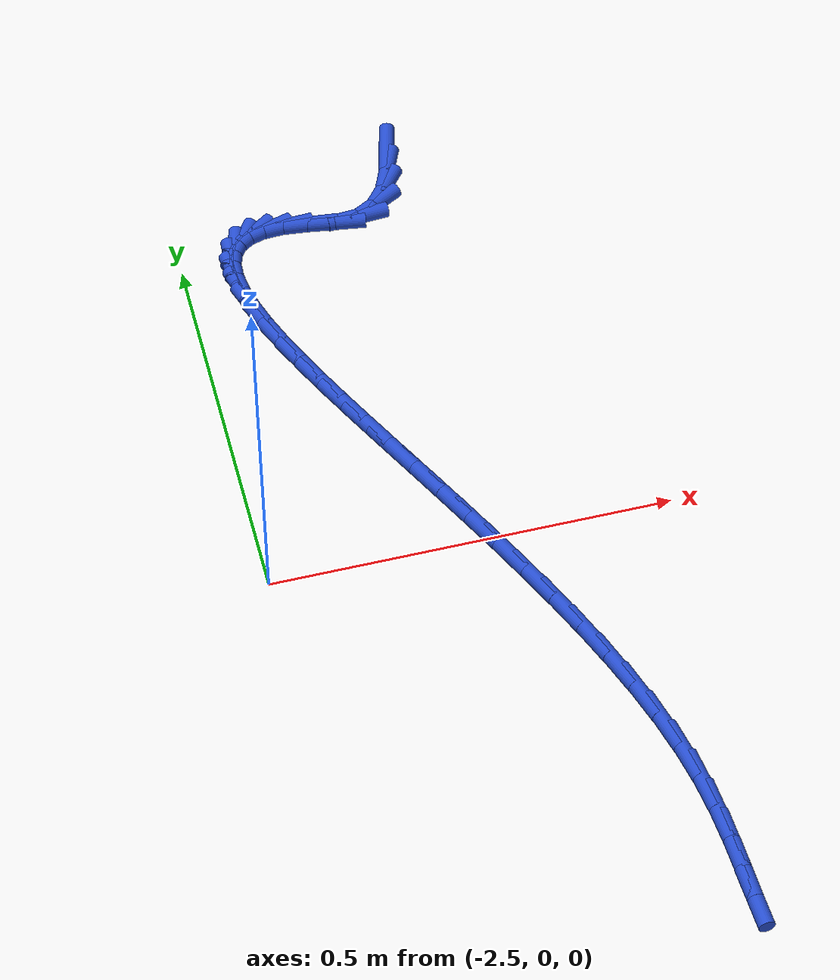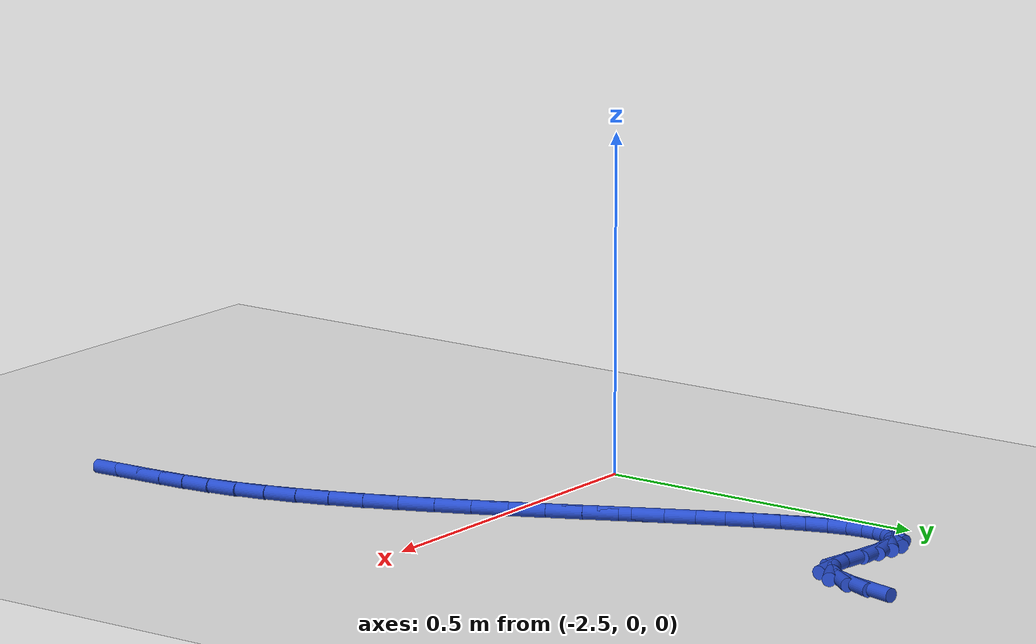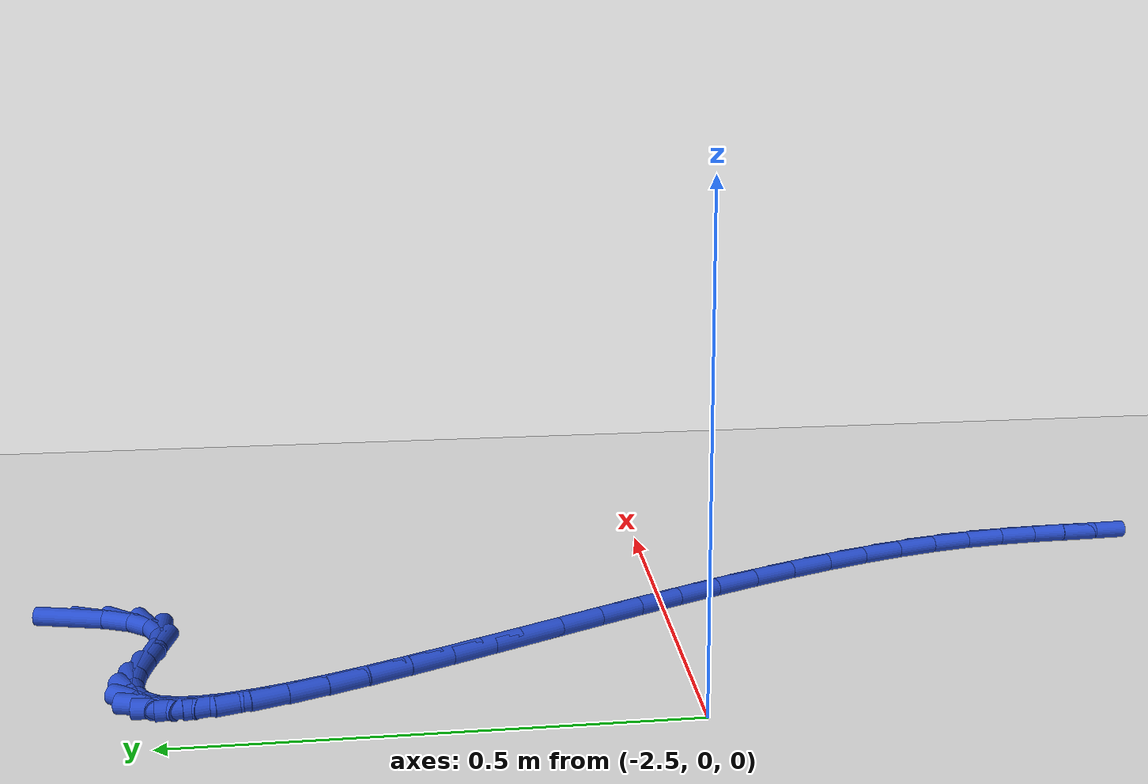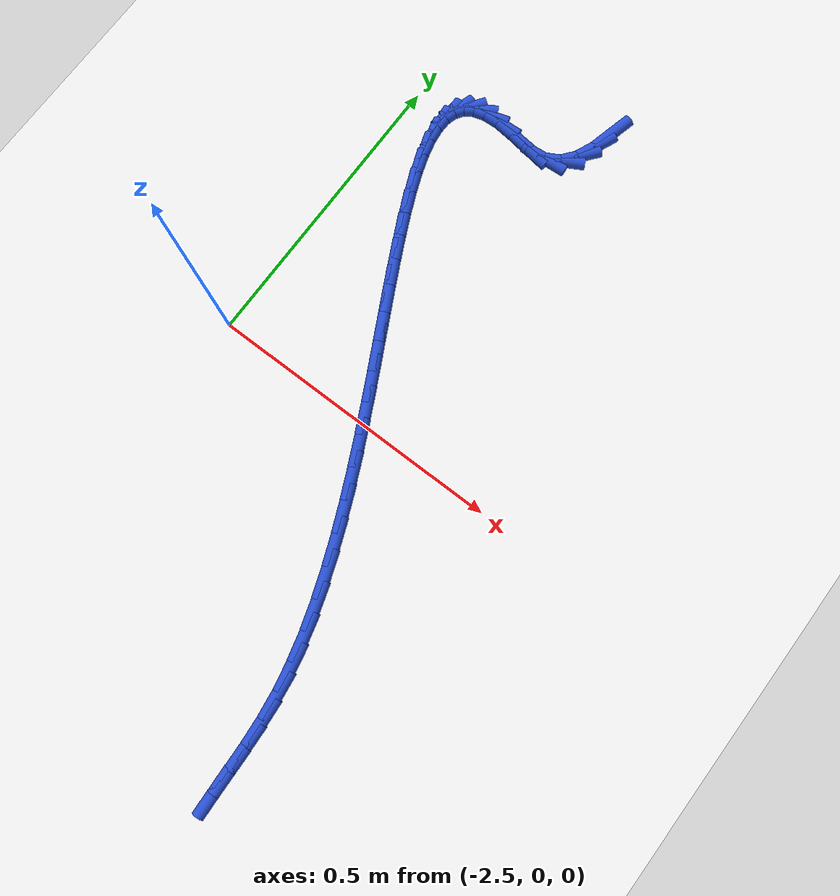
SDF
<sdf version="1.6">
 <world name="default">
  <model name="ground_plane">
   <static>1</static>
   <link name="link">
    <collision name="collision">
     <geometry><plane><normal>0 0 1</normal><size>100 100</size></plane></geometry>
     <surface><friction><ode><mu>100</mu><mu2>50</mu2></ode></friction></surface>
    </collision>
    <visual name="visual">
     <cast_shadows>0</cast_shadows>
     <geometry><plane><normal>0 0 1</normal><size>100 100</size></plane></geometry>
     <material>
      <script><uri>file://media/materials/scripts/gazebo.material</uri><name>Gazebo/WhiteGlow</name></script>
     </material>
    </visual>
   </link>
  </model>
  <model name="line">
   <link name="link_96">
    <pose>-2.200033931635867 0.6312345174077896 0.01 0 1.57 1.324181488729034</pose>
    <collision name="collision">
     <geometry><cylinder><radius>0.01</radius><length>0.08</length></cylinder></geometry>
    </collision>
    <visual name="visual">
     <material>
      <script><name>Gazebo/Blue</name><uri>file://media/materials/scripts/gazebo.material</uri></script>
     </material>
     <geometry><cylinder><radius>0.01</radius><length>0.08</length></cylinder></geometry>
    </visual>
   </link>
   <link name="link_97">
    <pose>-2.2090237972915436 0.5955234820043507 0.01 0 1.57 1.1661017748917124</pose>
    <collision name="collision">
     <geometry><cylinder><radius>0.01</radius><length>0.08</length></cylinder></geometry>
    </collision>
    <visual name="visual">
     <material>
      <script><name>Gazebo/Blue</name><uri>file://media/materials/scripts/gazebo.material</uri></script>
     </material>
     <geometry><cylinder><radius>0.01</radius><length>0.08</length></cylinder></geometry>
    </visual>
   </link>
   <link name="link_98">
    <pose>-2.2217738977504995 0.5657570339187514 0.01 0 1.57 0.8970929469493931</pose>
    <collision name="collision">
     <geometry><cylinder><radius>0.01</radius><length>0.08</length></cylinder></geometry>
    </collision>
    <visual name="visual">
     <material>
      <script><name>Gazebo/Blue</name><uri>file://media/materials/scripts/gazebo.material</uri></script>
     </material>
     <geometry><cylinder><radius>0.01</radius><length>0.08</length></cylinder></geometry>
    </visual>
   </link>
   <link name="link_99">
    <pose>-2.239467806494968 0.5435925431350213 0.01 0 1.57 0.4964865109241898</pose>
    <collision name="collision">
     <geometry><cylinder><radius>0.01</radius><length>0.08</length></cylinder></geometry>
    </collision>
    <visual name="visual">
     <material>
      <script><name>Gazebo/Blue</name><uri>file://media/materials/scripts/gazebo.material</uri></script>
     </material>
     <geometry><cylinder><radius>0.01</radius><length>0.08</length></cylinder></geometry>
    </visual>
   </link>
   <link name="link_100">
    <pose>-2.263289097007182 0.5306873796371903 0.01 0 1.57 0.06779342268536494</pose>
    <collision name="collision">
     <geometry><cylinder><radius>0.01</radius><length>0.08</length></cylinder></geometry>
    </collision>
    <visual name="visual">
     <material>
      <script><name>Gazebo/Blue</name><uri>file://media/materials/scripts/gazebo.material</uri></script>
     </material>
     <geometry><cylinder><radius>0.01</radius><length>0.08</length></cylinder></geometry>
    </visual>
   </link>
   <link name="link_101">
    <pose>-2.29432227981197 0.5285803049665666 0.01 0 1.57 -0.1472864663222539</pose>
    <collision name="collision">
     <geometry><cylinder><radius>0.01</radius><length>0.08</length></cylinder></geometry>
    </collision>
    <visual name="visual">
     <material>
      <script><name>Gazebo/Blue</name><uri>file://media/materials/scripts/gazebo.material</uri></script>
     </material>
     <geometry><cylinder><radius>0.01</radius><length>0.08</length></cylinder></geometry>
    </visual>
   </link>
   <link name="link_102">
    <pose>-2.3294621179672723 0.5337936806350279 0.01 0 1.57 -0.10527369933602307</pose>
    <collision name="collision">
     <geometry><cylinder><radius>0.01</radius><length>0.08</length></cylinder></geometry>
    </collision>
    <visual name="visual">
     <material>
      <script><name>Gazebo/Blue</name><uri>file://media/materials/scripts/gazebo.material</uri></script>
     </material>
     <geometry><cylinder><radius>0.01</radius><length>0.08</length></cylinder></geometry>
    </visual>
   </link>
   <link name="link_103">
    <pose>-2.360842791039986 0.5371094984777689 0.01 0 1.57 0.05088248573503267</pose>
    <collision name="collision">
     <geometry><cylinder><radius>0.01</radius><length>0.08</length></cylinder></geometry>
    </collision>
    <visual name="visual">
     <material>
      <script><name>Gazebo/Blue</name><uri>file://media/materials/scripts/gazebo.material</uri></script>
     </material>
     <geometry><cylinder><radius>0.01</radius><length>0.08</length></cylinder></geometry>
    </visual>
   </link>
   <link name="link_104">
    <pose>-2.3862630589339346 0.5358149346460016 0.01 0 1.57 0.28014283893355535</pose>
    <collision name="collision">
     <geometry><cylinder><radius>0.01</radius><length>0.08</length></cylinder></geometry>
    </collision>
    <visual name="visual">
     <material>
      <script><name>Gazebo/Blue</name><uri>file://media/materials/scripts/gazebo.material</uri></script>
     </material>
     <geometry><cylinder><radius>0.01</radius><length>0.08</length></cylinder></geometry>
    </visual>
   </link>
   <link name="link_105">
    <pose>-2.406059202718022 0.5301194062699236 0.01 0 1.57 0.5974458333489813</pose>
    <collision name="collision">
     <geometry><cylinder><radius>0.01</radius><length>0.08</length></cylinder></geometry>
    </collision>
    <visual name="visual">
     <material>
      <script><name>Gazebo/Blue</name><uri>file://media/materials/scripts/gazebo.material</uri></script>
     </material>
     <geometry><cylinder><radius>0.01</radius><length>0.08</length></cylinder></geometry>
    </visual>
   </link>
   <link name="link_106">
    <pose>-2.420576083762055 0.5202422116611217 0.01 0 1.57 0.9651908982570581</pose>
    <collision name="collision">
     <geometry><cylinder><radius>0.01</radius><length>0.08</length></cylinder></geometry>
    </collision>
    <visual name="visual">
     <material>
      <script><name>Gazebo/Blue</name><uri>file://media/materials/scripts/gazebo.material</uri></script>
     </material>
     <geometry><cylinder><radius>0.01</radius><length>0.08</length></cylinder></geometry>
    </visual>
   </link>
   <link name="link_107">
    <pose>-2.430158563435842 0.5064026491311819 0.01 0 1.57 1.2941100710265125</pose>
    <collision name="collision">
     <geometry><cylinder><radius>0.01</radius><length>0.08</length></cylinder></geometry>
    </collision>
    <visual name="visual">
     <material>
      <script><name>Gazebo/Blue</name><uri>file://media/materials/scripts/gazebo.material</uri></script>
     </material>
     <geometry><cylinder><radius>0.01</radius><length>0.08</length></cylinder></geometry>
    </visual>
   </link>
   <link name="link_108">
    <pose>-2.435151503109187 0.48882001699168975 0.01 0 1.57 1.5353593182479661</pose>
    <collision name="collision">
     <geometry><cylinder><radius>0.01</radius><length>0.08</length></cylinder></geometry>
    </collision>
    <visual name="visual">
     <material>
      <script><name>Gazebo/Blue</name><uri>file://media/materials/scripts/gazebo.material</uri></script>
     </material>
     <geometry><cylinder><radius>0.01</radius><length>0.08</length></cylinder></geometry>
    </visual>
   </link>
   <link name="link_109">
    <pose>-2.4358997641518974 0.4677136135542323 0.01 0 1.57 -1.4424019513399546</pose>
    <collision name="collision">
     <geometry><cylinder><radius>0.01</radius><length>0.08</length></cylinder></geometry>
    </collision>
    <visual name="visual">
     <material>
      <script><name>Gazebo/Blue</name><uri>file://media/materials/scripts/gazebo.material</uri></script>
     </material>
     <geometry><cylinder><radius>0.01</radius><length>0.08</length></cylinder></geometry>
    </visual>
   </link>
   <link name="link_110">
    <pose>-2.43274820793378 0.44330273713039475 0.01 0 1.57 -1.331559296932618</pose>
    <collision name="collision">
     <geometry><cylinder><radius>0.01</radius><length>0.08</length></cylinder></geometry>
    </collision>
    <visual name="visual">
     <material>
      <script><name>Gazebo/Blue</name><uri>file://media/materials/scripts/gazebo.material</uri></script>
     </material>
     <geometry><cylinder><radius>0.01</radius><length>0.08</length></cylinder></geometry>
    </visual>
   </link>
   <link name="link_111">
    <pose>-2.4260416958246416 0.4158066860317641 0.01 0 1.57 -1.2551060258552802</pose>
    <collision name="collision">
     <geometry><cylinder><radius>0.01</radius><length>0.08</length></cylinder></geometry>
    </collision>
    <visual name="visual">
     <material>
      <script><name>Gazebo/Blue</name><uri>file://media/materials/scripts/gazebo.material</uri></script>
     </material>
     <geometry><cylinder><radius>0.01</radius><length>0.08</length></cylinder></geometry>
    </visual>
   </link>
   <link name="link_112">
    <pose>-2.416125089194288 0.3854447585699258 0.01 0 1.57 -1.2013479641875977</pose>
    <collision name="collision">
     <geometry><cylinder><radius>0.01</radius><length>0.08</length></cylinder></geometry>
    </collision>
    <visual name="visual">
     <material>
      <script><name>Gazebo/Blue</name><uri>file://media/materials/scripts/gazebo.material</uri></script>
     </material>
     <geometry><cylinder><radius>0.01</radius><length>0.08</length></cylinder></geometry>
    </visual>
   </link>
   <link name="link_113">
    <pose>-2.403343249412526 0.3524362530564667 0.01 0 1.57 -1.1631554214692608</pose>
    <collision name="collision">
     <geometry><cylinder><radius>0.01</radius><length>0.08</length></cylinder></geometry>
    </collision>
    <visual name="visual">
     <material>
      <script><name>Gazebo/Blue</name><uri>file://media/materials/scripts/gazebo.material</uri></script>
     </material>
     <geometry><cylinder><radius>0.01</radius><length>0.08</length></cylinder></geometry>
    </visual>
   </link>
   <link name="link_114">
    <pose>-2.3880410378491628 0.31700046780297214 0.01 0 1.57 -1.1361204542648076</pose>
    <collision name="collision">
     <geometry><cylinder><radius>0.01</radius><length>0.08</length></cylinder></geometry>
    </collision>
    <visual name="visual">
     <material>
      <script><name>Gazebo/Blue</name><uri>file://media/materials/scripts/gazebo.material</uri></script>
     </material>
     <geometry><cylinder><radius>0.01</radius><length>0.08</length></cylinder></geometry>
    </visual>
   </link>
   <link name="link_115">
    <pose>-2.3705633158740045 0.27935670112102895 0.01 0 1.57 -1.1174524422533683</pose>
    <collision name="collision">
     <geometry><cylinder><radius>0.01</radius><length>0.08</length></cylinder></geometry>
    </collision>
    <visual name="visual">
     <material>
      <script><name>Gazebo/Blue</name><uri>file://media/materials/scripts/gazebo.material</uri></script>
     </material>
     <geometry><cylinder><radius>0.01</radius><length>0.08</length></cylinder></geometry>
    </visual>
   </link>
   <link name="link_116">
    <pose>-2.3512549448568576 0.2397242513222232 0.01 0 1.57 -1.1053486552160994</pose>
    <collision name="collision">
     <geometry><cylinder><radius>0.01</radius><length>0.08</length></cylinder></geometry>
    </collision>
    <visual name="visual">
     <material>
      <script><name>Gazebo/Blue</name><uri>file://media/materials/scripts/gazebo.material</uri></script>
     </material>
     <geometry><cylinder><radius>0.01</radius><length>0.08</length></cylinder></geometry>
    </visual>
   </link>
   <link name="link_117">
    <pose>-2.3304607861675284 0.19832241671813966 0.01 0 1.57 -1.0986339196788268</pose>
    <collision name="collision">
     <geometry><cylinder><radius>0.01</radius><length>0.08</length></cylinder></geometry>
    </collision>
    <visual name="visual">
     <material>
      <script><name>Gazebo/Blue</name><uri>file://media/materials/scripts/gazebo.material</uri></script>
     </material>
     <geometry><cylinder><radius>0.01</radius><length>0.08</length></cylinder></geometry>
    </visual>
   </link>
   <link name="link_118">
    <pose>-2.3085257011758245 0.15537049562036678 0.01 0 1.57 -1.0965504898381218</pose>
    <collision name="collision">
     <geometry><cylinder><radius>0.01</radius><length>0.08</length></cylinder></geometry>
    </collision>
    <visual name="visual">
     <material>
      <script><name>Gazebo/Blue</name><uri>file://media/materials/scripts/gazebo.material</uri></script>
     </material>
     <geometry><cylinder><radius>0.01</radius><length>0.08</length></cylinder></geometry>
    </visual>
   </link>
   <link name="link_119">
    <pose>-2.2857945512515507 0.11108778634048953 0.01 0 1.57 -1.0986335123437627</pose>
    <collision name="collision">
     <geometry><cylinder><radius>0.01</radius><length>0.08</length></cylinder></geometry>
    </collision>
    <visual name="visual">
     <material>
      <script><name>Gazebo/Blue</name><uri>file://media/materials/scripts/gazebo.material</uri></script>
     </material>
     <geometry><cylinder><radius>0.01</radius><length>0.08</length></cylinder></geometry>
    </visual>
   </link>
   <link name="link_120">
    <pose>-2.262612197764515 0.06569358719009404 0.01 0 1.57 -1.104637097486446</pose>
    <collision name="collision">
     <geometry><cylinder><radius>0.01</radius><length>0.08</length></cylinder></geometry>
    </collision>
    <visual name="visual">
     <material>
      <script><name>Gazebo/Blue</name><uri>file://media/materials/scripts/gazebo.material</uri></script>
     </material>
     <geometry><cylinder><radius>0.01</radius><length>0.08</length></cylinder></geometry>
    </visual>
   </link>
   <link name="link_121">
    <pose>-2.2393235020845235 0.019407196480766525 0.01 0 1.57 -1.1144918376708244</pose>
    <collision name="collision">
     <geometry><cylinder><radius>0.01</radius><length>0.08</length></cylinder></geometry>
    </collision>
    <visual name="visual">
     <material>
      <script><name>Gazebo/Blue</name><uri>file://media/materials/scripts/gazebo.material</uri></script>
     </material>
     <geometry><cylinder><radius>0.01</radius><length>0.08</length></cylinder></geometry>
    </visual>
   </link>
   <link name="link_122">
    <pose>-2.2162733255813825 -0.027552087475908163 0.01 0 1.57 -1.1282832037546906</pose>
    <collision name="collision">
     <geometry><cylinder><radius>0.01</radius><length>0.08</length></cylinder></geometry>
    </collision>
    <visual name="visual">
     <material>
      <script><name>Gazebo/Blue</name><uri>file://media/materials/scripts/gazebo.material</uri></script>
     </material>
     <geometry><cylinder><radius>0.01</radius><length>0.08</length></cylinder></geometry>
    </visual>
   </link>
   <link name="link_123">
    <pose>-2.1938065296248985 -0.07496496636834134 0.01 0 1.57 -1.1462450555171713</pose>
    <collision name="collision">
     <geometry><cylinder><radius>0.01</radius><length>0.08</length></cylinder></geometry>
    </collision>
    <visual name="visual">
     <material>
      <script><name>Gazebo/Blue</name><uri>file://media/materials/scripts/gazebo.material</uri></script>
     </material>
     <geometry><cylinder><radius>0.01</radius><length>0.08</length></cylinder></geometry>
    </visual>
   </link>
   <link name="link_124">
    <pose>-2.1722679755848793 -0.12261214188494818 0.01 0 1.57 -1.1687652728186044</pose>
    <collision name="collision">
     <geometry><cylinder><radius>0.01</radius><length>0.08</length></cylinder></geometry>
    </collision>
    <visual name="visual">
     <material>
      <script><name>Gazebo/Blue</name><uri>file://media/materials/scripts/gazebo.material</uri></script>
     </material>
     <geometry><cylinder><radius>0.01</radius><length>0.08</length></cylinder></geometry>
    </visual>
   </link>
   <link name="link_125">
    <pose>-2.15200252483113 -0.17027431571414253 0.01 0 1.57 -1.1964020836233193</pose>
    <collision name="collision">
     <geometry><cylinder><radius>0.01</radius><length>0.08</length></cylinder></geometry>
    </collision>
    <visual name="visual">
     <material>
      <script><name>Gazebo/Blue</name><uri>file://media/materials/scripts/gazebo.material</uri></script>
     </material>
     <geometry><cylinder><radius>0.01</radius><length>0.08</length></cylinder></geometry>
    </visual>
   </link>
   <link name="link_126">
    <pose>-2.133355038733457 -0.21773218954433943 0.01 0 1.57 -1.2299103125443265</pose>
    <collision name="collision">
     <geometry><cylinder><radius>0.01</radius><length>0.08</length></cylinder></geometry>
    </collision>
    <visual name="visual">
     <material>
      <script><name>Gazebo/Blue</name><uri>file://media/materials/scripts/gazebo.material</uri></script>
     </material>
     <geometry><cylinder><radius>0.01</radius><length>0.08</length></cylinder></geometry>
    </visual>
   </link>
   <link name="link_127">
    <pose>-2.1166703786616683 -0.26476646506395035 0.01 0 1.57 -1.270276299481934</pose>
    <collision name="collision">
     <geometry><cylinder><radius>0.01</radius><length>0.08</length></cylinder></geometry>
    </collision>
    <visual name="visual">
     <material>
      <script><name>Gazebo/Blue</name><uri>file://media/materials/scripts/gazebo.material</uri></script>
     </material>
     <geometry><cylinder><radius>0.01</radius><length>0.08</length></cylinder></geometry>
    </visual>
   </link>
   <link name="link_128">
    <pose>-2.1022934059855696 -0.31115784396139035 0.01 0 1.57 -1.3187578166050682</pose>
    <collision name="collision">
     <geometry><cylinder><radius>0.01</radius><length>0.08</length></cylinder></geometry>
    </collision>
    <visual name="visual">
     <material>
      <script><name>Gazebo/Blue</name><uri>file://media/materials/scripts/gazebo.material</uri></script>
     </material>
     <geometry><cylinder><radius>0.01</radius><length>0.08</length></cylinder></geometry>
    </visual>
   </link>
   <link name="link_129">
    <pose>-2.0905689820749678 -0.3566870279250733 0.01 0 1.57 -1.3769129942875904</pose>
    <collision name="collision">
     <geometry><cylinder><radius>0.01</radius><length>0.08</length></cylinder></geometry>
    </collision>
    <visual name="visual">
     <material>
      <script><name>Gazebo/Blue</name><uri>file://media/materials/scripts/gazebo.material</uri></script>
     </material>
     <geometry><cylinder><radius>0.01</radius><length>0.08</length></cylinder></geometry>
    </visual>
   </link>
   <link name="link_130">
    <pose>-2.081841686964956 -0.4011347108924226 0.01 0 1.57 -1.4402195881960311</pose>
    <collision name="collision">
     <geometry><cylinder><radius>0.01</radius><length>0.08</length></cylinder></geometry>
    </collision>
    <visual name="visual">
     <material>
      <script><name>Gazebo/Blue</name><uri>file://media/materials/scripts/gazebo.material</uri></script>
     </material>
     <geometry><cylinder><radius>0.01</radius><length>0.08</length></cylinder></geometry>
    </visual>
   </link>
   <link name="link_131">
    <pose>-2.076176480105757 -0.4442738830359134 0.01 0 1.57 -1.490589566498928</pose>
    <collision name="collision">
     <geometry><cylinder><radius>0.01</radius><length>0.08</length></cylinder></geometry>
    </collision>
    <visual name="visual">
     <material>
      <script><name>Gazebo/Blue</name><uri>file://media/materials/scripts/gazebo.material</uri></script>
     </material>
     <geometry><cylinder><radius>0.01</radius><length>0.08</length></cylinder></geometry>
    </visual>
   </link>
   <link name="link_132">
    <pose>-2.0728341927399403 -0.48585538016944924 0.01 0 1.57 -1.523003486269246</pose>
    <collision name="collision">
     <geometry><cylinder><radius>0.01</radius><length>0.08</length></cylinder></geometry>
    </collision>
    <visual name="visual">
     <material>
      <script><name>Gazebo/Blue</name><uri>file://media/materials/scripts/gazebo.material</uri></script>
     </material>
     <geometry><cylinder><radius>0.01</radius><length>0.08</length></cylinder></geometry>
    </visual>
   </link>
   <link name="link_133">
    <pose>-2.0709319894963176 -0.5256260799798046 0.01 0 1.57 -1.5351426713087633</pose>
    <collision name="collision">
     <geometry><cylinder><radius>0.01</radius><length>0.08</length></cylinder></geometry>
    </collision>
    <visual name="visual">
     <material>
      <script><name>Gazebo/Blue</name><uri>file://media/materials/scripts/gazebo.material</uri></script>
     </material>
     <geometry><cylinder><radius>0.01</radius><length>0.08</length></cylinder></geometry>
    </visual>
   </link>
   <link name="link_134">
    <pose>-2.0695870350037064 -0.5633328601537541 0.01 0 1.57 -1.5236272300292781</pose>
    <collision name="collision">
     <geometry><cylinder><radius>0.01</radius><length>0.08</length></cylinder></geometry>
    </collision>
    <visual name="visual">
     <material>
      <script><name>Gazebo/Blue</name><uri>file://media/materials/scripts/gazebo.material</uri></script>
     </material>
     <geometry><cylinder><radius>0.01</radius><length>0.08</length></cylinder></geometry>
    </visual>
   </link>
  </model>
 </world>
</sdf>
